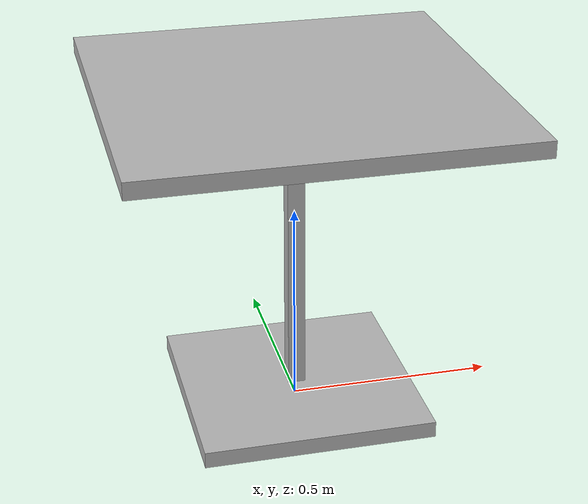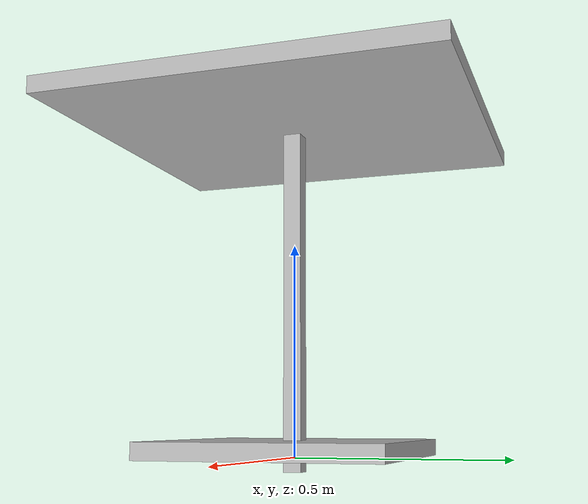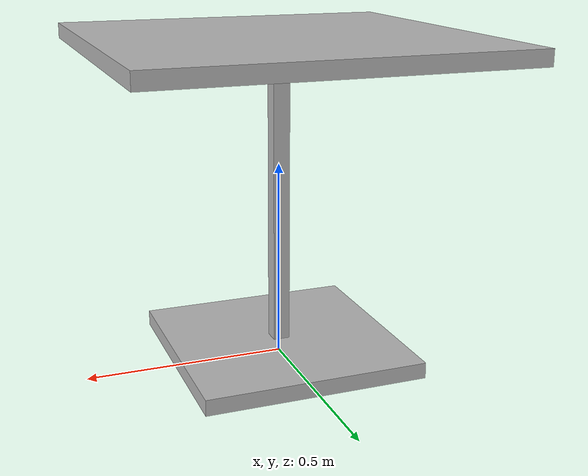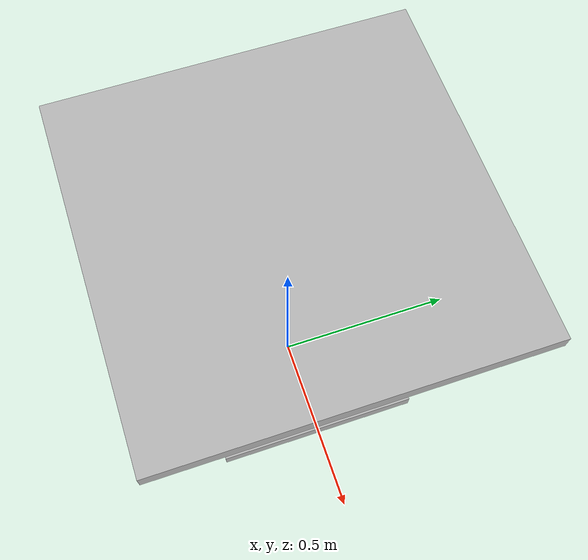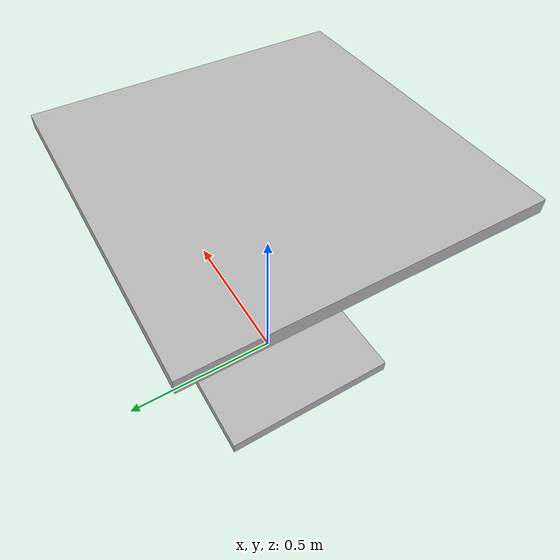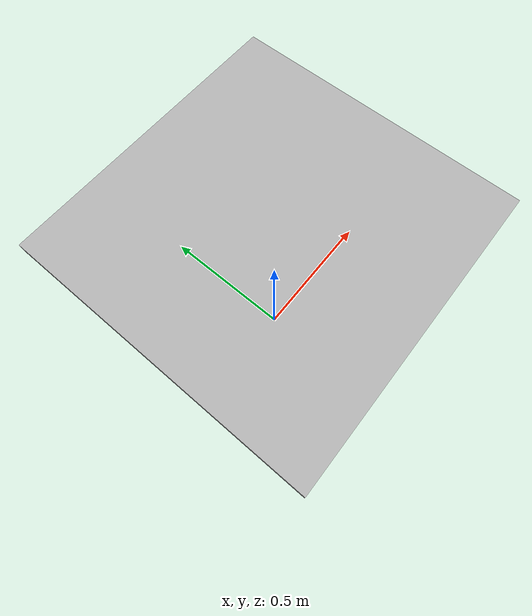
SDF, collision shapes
<?xml version="1.0" ?>
<sdf version="1.4">
  <model name="cafe_table">
    <static>true</static>
    <link name="link">
      <collision name="surface">
        <pose>0 0 0.80 0 0 0</pose>
        <geometry>
          <box>
            <size>0.913 0.913 0.04</size>
          </box>
        </geometry>
	<surface>
	  <friction>
  	    <ode>
	      <mu>0.4</mu>
            </ode>
          </friction>
        </surface>
      </collision>

      <collision name="column">
        <pose>0 0 0.37 0 0 0</pose>
        <geometry>
          <box>
            <size>0.042 0.042 0.806</size>
          </box>
        </geometry>
      </collision>

      <collision name="base">
        <pose>0 0 0.02 0 0 0</pose>
        <geometry>
          <box>
            <size>0.56 0.56 0.04</size>
          </box>
        </geometry>
      </collision>

      <visual name="visual">
        <geometry>
          <mesh>
            <uri>model://cafe_table/meshes/cafe_table.dae</uri>
          </mesh>
        </geometry>
      </visual>
    </link>
  </model>
</sdf>
